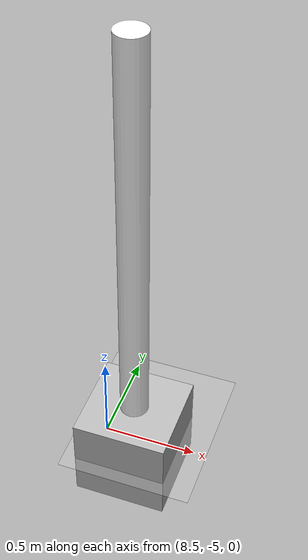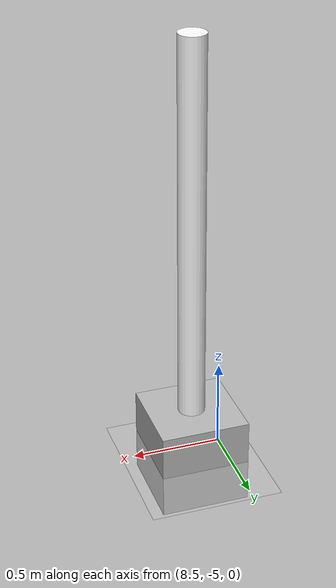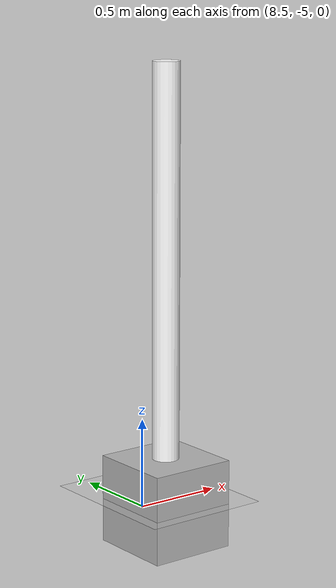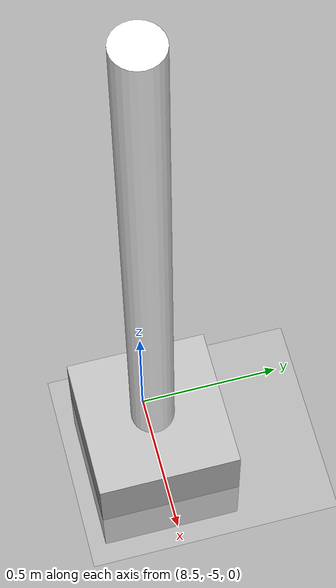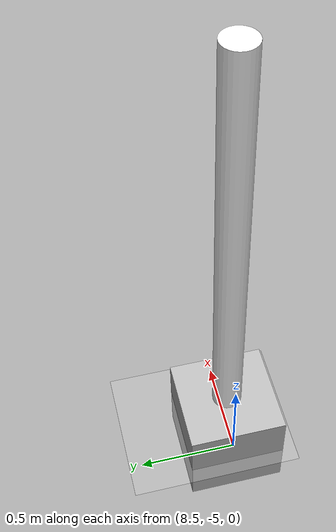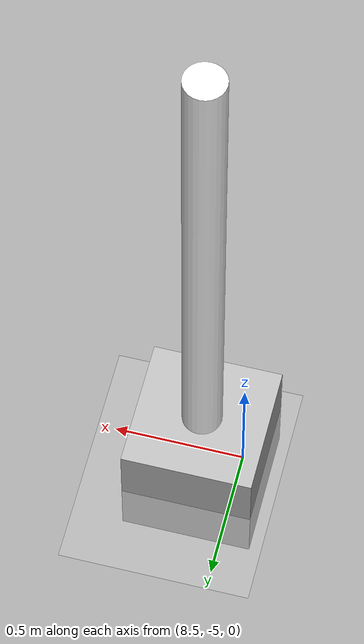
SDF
<?xml version="1.0" ?>
<sdf version="1.5">
  <world name="default">
    <scene>
      <ambient>0.01 0.01 0.01 1.0</ambient>
      <sky>
        <clouds>
          <speed>12</speed>
        </clouds>
      </sky>
      <shadows>1</shadows>
      <grid>false</grid>
    </scene>

    <static>true</static>
    <include>
      <uri>model://ground_plane</uri>
    </include>

    <!-- Global light source -->
    <include>
      <uri>model://sun</uri>
    </include>

    <model name="pillion1">
      <static>true</static>
      <pose>8.66025403784 -5 0 0 0 0</pose>
      <link name="pillion1">
        <collision name="pillion1_collision">
        	<pose>0 0 1.2192 0 0 0</pose>
          <geometry>
            <cylinder>
              <radius>0.0762</radius>
              <length>2.4384</length>
            </cylinder>
          </geometry>
        </collision>
        <visual name="pillion1_visual">
          <cast_shadows>false</cast_shadows>
          <pose>0 0 1.2192 0 0 0</pose>
          <geometry>
            <cylinder>
              <radius>0.0762</radius>
              <length>2.4384</length>
            </cylinder>
          </geometry>
          <material>
            <ambient>1 1 1 1</ambient>
            <diffuse>1 1 1 1</diffuse>
            <specular>0 0 0 0</specular>
            <emissive>0 0 0 1</emissive>
          </material>
        </visual>
      </link>
      <link name="camera_link">
        <visual name="visual">
          <cast_shadows>0</cast_shadows>
          <geometry>
            <box>
              <size>0.5 0.5 0.5</size>
            </box>
          </geometry>
        </visual>
        <sensor type="camera" name="testing_cam">
          <update_rate>30.0</update_rate>
          <camera name="testing">
            <horizontal_fov>1</horizontal_fov>
            <image>
              <width>1280</width>
              <height>768</height>
              <format>R8G8B8</format>
            </image>
            <clip>
              <near>0.02</near>
              <far>300</far>
            </clip>
            <noise>
              <type>gaussian</type>
              <mean>0.0</mean>
              <stddev>0.007</stddev>
            </noise>
          </camera>
          <plugin name="camera_controller" filename="libgazebo_ros_camera.so">
              <alwaysOn>true</alwaysOn>
              <updateRate>0</updateRate>
              <cameraName>head</cameraName>
              <imageTopicName>image_raw</imageTopicName>
              <cameraInfoTopicName>camera_info</cameraInfoTopicName>
              <frameName>base_link</frameName>
              <hackBaseline>0.07</hackBaseline>
              <distortionK1>0.0</distortionK1>
              <distortionK2>0.0</distortionK2>
              <distortionK3>0.0</distortionK3>
              <distortionT1>0.0</distortionT1>
              <distortionT2>0.0</distortionT2>
          </plugin>
        </sensor>
      </link>
    </model>

  </world>
</sdf>
